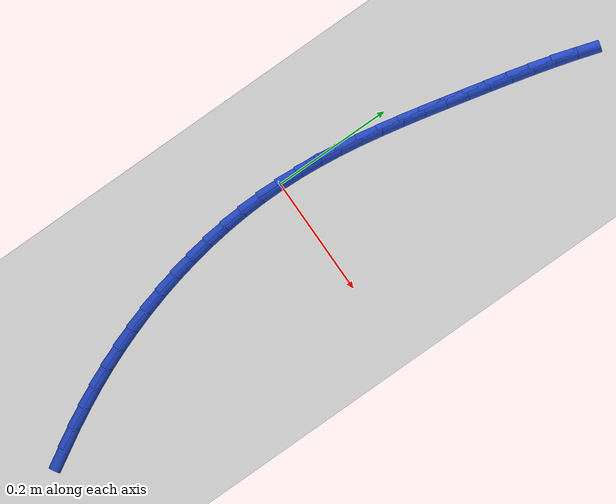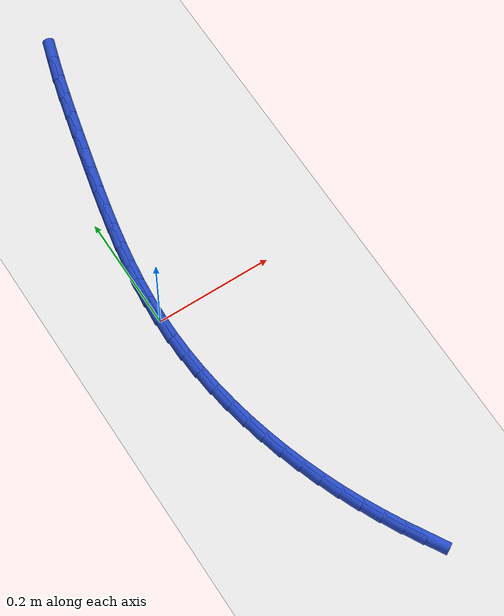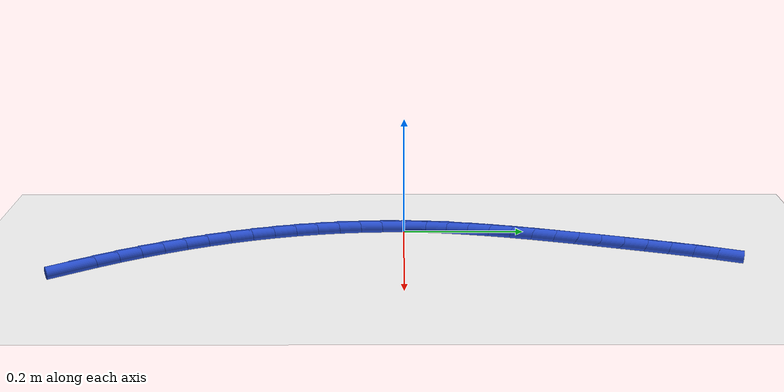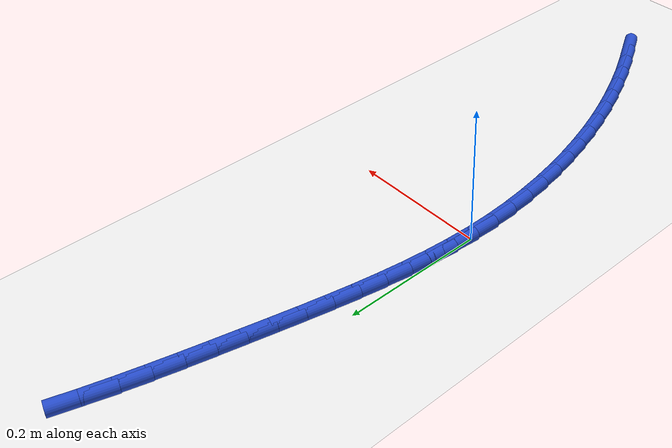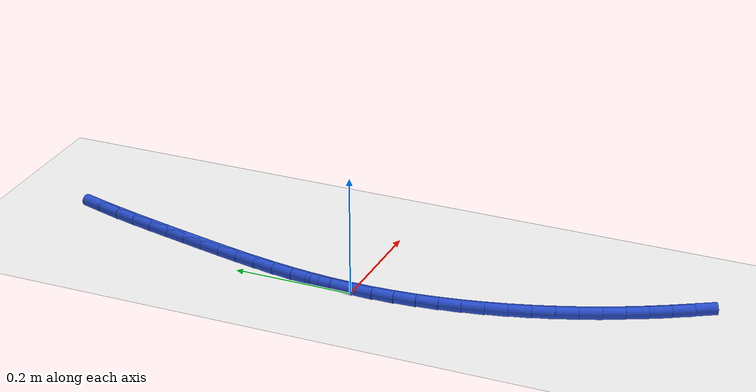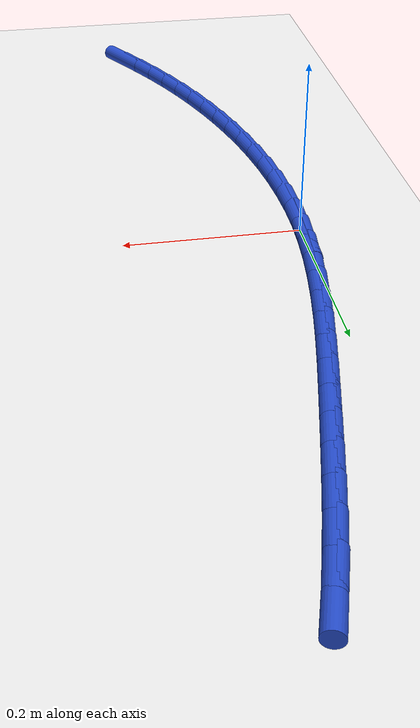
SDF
<sdf version="1.6">
 <world name="default">
  <model name="ground_plane">
   <static>1</static>
   <link name="link">
    <collision name="collision">
     <geometry><plane><normal>0 0 1</normal><size>100 100</size></plane></geometry>
     <surface><friction><ode><mu>100</mu><mu2>50</mu2></ode></friction></surface>
    </collision>
    <visual name="visual">
     <cast_shadows>0</cast_shadows>
     <geometry><plane><normal>0 0 1</normal><size>100 100</size></plane></geometry>
     <material>
      <script><uri>file://media/materials/scripts/gazebo.material</uri><name>Gazebo/WhiteGlow</name></script>
     </material>
    </visual>
   </link>
  </model>
  <model name="line">
   <link name="link_0">
    <pose>3.469446951953614e-18 -6.938893903907228e-17 0.01 0 1.57 1.5252709959177169</pose>
    <collision name="collision">
     <geometry><cylinder><radius>0.01</radius><length>0.08</length></cylinder></geometry>
    </collision>
    <visual name="visual">
     <material>
      <script><name>Gazebo/Blue</name><uri>file://media/materials/scripts/gazebo.material</uri></script>
     </material>
     <geometry><cylinder><radius>0.01</radius><length>0.08</length></cylinder></geometry>
    </visual>
   </link>
   <link name="link_1">
    <pose>0.0016215854271124785 0.03559479888819767 0.01 0 1.57 1.4843025743258724</pose>
    <collision name="collision">
     <geometry><cylinder><radius>0.01</radius><length>0.08</length></cylinder></geometry>
    </collision>
    <visual name="visual">
     <material>
      <script><name>Gazebo/Blue</name><uri>file://media/materials/scripts/gazebo.material</uri></script>
     </material>
     <geometry><cylinder><radius>0.01</radius><length>0.08</length></cylinder></geometry>
    </visual>
   </link>
   <link name="link_2">
    <pose>0.004694859227865654 0.07103789153256174 0.01 0 1.57 1.448122174521788</pose>
    <collision name="collision">
     <geometry><cylinder><radius>0.01</radius><length>0.08</length></cylinder></geometry>
    </collision>
    <visual name="visual">
     <material>
      <script><name>Gazebo/Blue</name><uri>file://media/materials/scripts/gazebo.material</uri></script>
     </material>
     <geometry><cylinder><radius>0.01</radius><length>0.08</length></cylinder></geometry>
    </visual>
   </link>
   <link name="link_3">
    <pose>0.009051522361451635 0.1063736708929551 0.01 0 1.57 1.4168965451180486</pose>
    <collision name="collision">
     <geometry><cylinder><radius>0.01</radius><length>0.08</length></cylinder></geometry>
    </collision>
    <visual name="visual">
     <material>
      <script><name>Gazebo/Blue</name><uri>file://media/materials/scripts/gazebo.material</uri></script>
     </material>
     <geometry><cylinder><radius>0.01</radius><length>0.08</length></cylinder></geometry>
    </visual>
   </link>
   <link name="link_4">
    <pose>0.014523275787062528 0.14164652992924068 0.01 0 1.57 1.3907048843323373</pose>
    <collision name="collision">
     <geometry><cylinder><radius>0.01</radius><length>0.08</length></cylinder></geometry>
    </collision>
    <visual name="visual">
     <material>
      <script><name>Gazebo/Blue</name><uri>file://media/materials/scripts/gazebo.material</uri></script>
     </material>
     <geometry><cylinder><radius>0.01</radius><length>0.08</length></cylinder></geometry>
    </visual>
   </link>
   <link name="link_5">
    <pose>0.020941820463890454 0.1769008616012815 0.01 0 1.57 1.3695609450814363</pose>
    <collision name="collision">
     <geometry><cylinder><radius>0.01</radius><length>0.08</length></cylinder></geometry>
    </collision>
    <visual name="visual">
     <material>
      <script><name>Gazebo/Blue</name><uri>file://media/materials/scripts/gazebo.material</uri></script>
     </material>
     <geometry><cylinder><radius>0.01</radius><length>0.08</length></cylinder></geometry>
    </visual>
   </link>
   <link name="link_6">
    <pose>0.028138857351127516 0.21218105886894056 0.01 0 1.57 1.3534331985920862</pose>
    <collision name="collision">
     <geometry><cylinder><radius>0.01</radius><length>0.08</length></cylinder></geometry>
    </collision>
    <visual name="visual">
     <material>
      <script><name>Gazebo/Blue</name><uri>file://media/materials/scripts/gazebo.material</uri></script>
     </material>
     <geometry><cylinder><radius>0.01</radius><length>0.08</length></cylinder></geometry>
    </visual>
   </link>
   <link name="link_7">
    <pose>0.035946087407965795 0.24753151469208062 0.01 0 1.57 1.3422615743175024</pose>
    <collision name="collision">
     <geometry><cylinder><radius>0.01</radius><length>0.08</length></cylinder></geometry>
    </collision>
    <visual name="visual">
     <material>
      <script><name>Gazebo/Blue</name><uri>file://media/materials/scripts/gazebo.material</uri></script>
     </material>
     <geometry><cylinder><radius>0.01</radius><length>0.08</length></cylinder></geometry>
    </visual>
   </link>
   <link name="link_8">
    <pose>0.04419521159359743 0.28299662203056475 0.01 0 1.57 1.3359701525868268</pose>
    <collision name="collision">
     <geometry><cylinder><radius>0.01</radius><length>0.08</length></cylinder></geometry>
    </collision>
    <visual name="visual">
     <material>
      <script><name>Gazebo/Blue</name><uri>file://media/materials/scripts/gazebo.material</uri></script>
     </material>
     <geometry><cylinder><radius>0.01</radius><length>0.08</length></cylinder></geometry>
    </visual>
   </link>
   <link name="link_9">
    <pose>0.05271793086721454 0.318620773844256 0.01 0 1.57 1.3335910321006836</pose>
    <collision name="collision">
     <geometry><cylinder><radius>0.01</radius><length>0.08</length></cylinder></geometry>
    </collision>
    <visual name="visual">
     <material>
      <script><name>Gazebo/Blue</name><uri>file://media/materials/scripts/gazebo.material</uri></script>
     </material>
     <geometry><cylinder><radius>0.01</radius><length>0.08</length></cylinder></geometry>
    </visual>
   </link>
   <link name="link_10">
    <pose>0.06137551307065232 0.3544319178844713 0.01 0 1.57 1.3291348992225152</pose>
    <collision name="collision">
     <geometry><cylinder><radius>0.01</radius><length>0.08</length></cylinder></geometry>
    </collision>
    <visual name="visual">
     <material>
      <script><name>Gazebo/Blue</name><uri>file://media/materials/scripts/gazebo.material</uri></script>
     </material>
     <geometry><cylinder><radius>0.01</radius><length>0.08</length></cylinder></geometry>
    </visual>
   </link>
   <link name="link_11">
    <pose>0.07022792285595555 0.39034748600808084 0.01 0 1.57 1.3201595947029447</pose>
    <collision name="collision">
     <geometry><cylinder><radius>0.01</radius><length>0.08</length></cylinder></geometry>
    </collision>
    <visual name="visual">
     <material>
      <script><name>Gazebo/Blue</name><uri>file://media/materials/scripts/gazebo.material</uri></script>
     </material>
     <geometry><cylinder><radius>0.01</radius><length>0.08</length></cylinder></geometry>
    </visual>
   </link>
   <link name="link_12">
    <pose>0.07941697653739098 0.42623938387728244 0.01 0 1.57 1.3066158979692932</pose>
    <collision name="collision">
     <geometry><cylinder><radius>0.01</radius><length>0.08</length></cylinder></geometry>
    </collision>
    <visual name="visual">
     <material>
      <script><name>Gazebo/Blue</name><uri>file://media/materials/scripts/gazebo.material</uri></script>
     </material>
     <geometry><cylinder><radius>0.01</radius><length>0.08</length></cylinder></geometry>
    </visual>
   </link>
   <link name="link_13">
    <pose>0.0890847450197053 0.4619793755501151 0.01 0 1.57 1.2884036981123361</pose>
    <collision name="collision">
     <geometry><cylinder><radius>0.01</radius><length>0.08</length></cylinder></geometry>
    </collision>
    <visual name="visual">
     <material>
      <script><name>Gazebo/Blue</name><uri>file://media/materials/scripts/gazebo.material</uri></script>
     </material>
     <geometry><cylinder><radius>0.01</radius><length>0.08</length></cylinder></geometry>
    </visual>
   </link>
   <link name="link_14">
    <pose>0.09937329920764522 0.4974392250846179 0.01 0 1.57 1.265370862041352</pose>
    <collision name="collision">
     <geometry><cylinder><radius>0.01</radius><length>0.08</length></cylinder></geometry>
    </collision>
    <visual name="visual">
     <material>
      <script><name>Gazebo/Blue</name><uri>file://media/materials/scripts/gazebo.material</uri></script>
     </material>
     <geometry><cylinder><radius>0.01</radius><length>0.08</length></cylinder></geometry>
    </visual>
   </link>
   <link name="link_175">
    <pose>0.14332247752189303 -0.513489507335799 0.01 0 1.57 -1.0478483712245867</pose>
    <collision name="collision">
     <geometry><cylinder><radius>0.01</radius><length>0.08</length></cylinder></geometry>
    </collision>
    <visual name="visual">
     <material>
      <script><name>Gazebo/Blue</name><uri>file://media/materials/scripts/gazebo.material</uri></script>
     </material>
     <geometry><cylinder><radius>0.01</radius><length>0.08</length></cylinder></geometry>
    </visual>
   </link>
   <link name="link_176">
    <pose>0.12536598000557306 -0.4823411427582502 0.01 0 1.57 -1.080721966199883</pose>
    <collision name="collision">
     <geometry><cylinder><radius>0.01</radius><length>0.08</length></cylinder></geometry>
    </collision>
    <visual name="visual">
     <material>
      <script><name>Gazebo/Blue</name><uri>file://media/materials/scripts/gazebo.material</uri></script>
     </material>
     <geometry><cylinder><radius>0.01</radius><length>0.08</length></cylinder></geometry>
    </visual>
   </link>
   <link name="link_177">
    <pose>0.1084879889702696 -0.45070382734485265 0.01 0 1.57 -1.1144539237789624</pose>
    <collision name="collision">
     <geometry><cylinder><radius>0.01</radius><length>0.08</length></cylinder></geometry>
    </collision>
    <visual name="visual">
     <material>
      <script><name>Gazebo/Blue</name><uri>file://media/materials/scripts/gazebo.material</uri></script>
     </material>
     <geometry><cylinder><radius>0.01</radius><length>0.08</length></cylinder></geometry>
    </visual>
   </link>
   <link name="link_178">
    <pose>0.09270857056025017 -0.41856007475043366 0.01 0 1.57 -1.14895283165816</pose>
    <collision name="collision">
     <geometry><cylinder><radius>0.01</radius><length>0.08</length></cylinder></geometry>
    </collision>
    <visual name="visual">
     <material>
      <script><name>Gazebo/Blue</name><uri>file://media/materials/scripts/gazebo.material</uri></script>
     </material>
     <geometry><cylinder><radius>0.01</radius><length>0.08</length></cylinder></geometry>
    </visual>
   </link>
   <link name="link_179">
    <pose>0.07804779091978246 -0.38589239862982055 0.01 0 1.57 -1.1841156832962458</pose>
    <collision name="collision">
     <geometry><cylinder><radius>0.01</radius><length>0.08</length></cylinder></geometry>
    </collision>
    <visual name="visual">
     <material>
      <script><name>Gazebo/Blue</name><uri>file://media/materials/scripts/gazebo.material</uri></script>
     </material>
     <geometry><cylinder><radius>0.01</radius><length>0.08</length></cylinder></geometry>
    </visual>
   </link>
   <link name="link_180">
    <pose>0.06452571619313324 -0.3526833126378388 0.01 0 1.57 -1.2198288719360468</pose>
    <collision name="collision">
     <geometry><cylinder><radius>0.01</radius><length>0.08</length></cylinder></geometry>
    </collision>
    <visual name="visual">
     <material>
      <script><name>Gazebo/Blue</name><uri>file://media/materials/scripts/gazebo.material</uri></script>
     </material>
     <geometry><cylinder><radius>0.01</radius><length>0.08</length></cylinder></geometry>
    </visual>
   </link>
   <link name="link_181">
    <pose>0.05216243583164081 -0.31891541360673925 0.01 0 1.57 -1.2559384207884199</pose>
    <collision name="collision">
     <geometry><cylinder><radius>0.01</radius><length>0.08</length></cylinder></geometry>
    </collision>
    <visual name="visual">
     <material>
      <script><name>Gazebo/Blue</name><uri>file://media/materials/scripts/gazebo.material</uri></script>
     </material>
     <geometry><cylinder><radius>0.01</radius><length>0.08</length></cylinder></geometry>
    </visual>
   </link>
   <link name="link_182">
    <pose>0.0409855325851617 -0.2845980401791995 0.01 0 1.57 -1.2923900507349757</pose>
    <collision name="collision">
     <geometry><cylinder><radius>0.01</radius><length>0.08</length></cylinder></geometry>
    </collision>
    <visual name="visual">
     <material>
      <script><name>Gazebo/Blue</name><uri>file://media/materials/scripts/gazebo.material</uri></script>
     </material>
     <geometry><cylinder><radius>0.01</radius><length>0.08</length></cylinder></geometry>
    </visual>
   </link>
   <link name="link_183">
    <pose>0.031040779359661454 -0.24980544736351473 0.01 0 1.57 -1.3293477980767565</pose>
    <collision name="collision">
     <geometry><cylinder><radius>0.01</radius><length>0.08</length></cylinder></geometry>
    </collision>
    <visual name="visual">
     <material>
      <script><name>Gazebo/Blue</name><uri>file://media/materials/scripts/gazebo.material</uri></script>
     </material>
     <geometry><cylinder><radius>0.01</radius><length>0.08</length></cylinder></geometry>
    </visual>
   </link>
   <link name="link_184">
    <pose>0.022376655829323782 -0.21462154998366526 0.01 0 1.57 -1.3669948023093415</pose>
    <collision name="collision">
     <geometry><cylinder><radius>0.01</radius><length>0.08</length></cylinder></geometry>
    </collision>
    <visual name="visual">
     <material>
      <script><name>Gazebo/Blue</name><uri>file://media/materials/scripts/gazebo.material</uri></script>
     </material>
     <geometry><cylinder><radius>0.01</radius><length>0.08</length></cylinder></geometry>
    </visual>
   </link>
   <link name="link_185">
    <pose>0.015041641668332401 -0.1791302628636312 0.01 0 1.57 -1.4055123975767927</pose>
    <collision name="collision">
     <geometry><cylinder><radius>0.01</radius><length>0.08</length></cylinder></geometry>
    </collision>
    <visual name="visual">
     <material>
      <script><name>Gazebo/Blue</name><uri>file://media/materials/scripts/gazebo.material</uri></script>
     </material>
     <geometry><cylinder><radius>0.01</radius><length>0.08</length></cylinder></geometry>
    </visual>
   </link>
   <link name="link_186">
    <pose>0.009084216550871141 -0.14341550082739346 0.01 0 1.57 -1.4450804016134307</pose>
    <collision name="collision">
     <geometry><cylinder><radius>0.01</radius><length>0.08</length></cylinder></geometry>
    </collision>
    <visual name="visual">
     <material>
      <script><name>Gazebo/Blue</name><uri>file://media/materials/scripts/gazebo.material</uri></script>
     </material>
     <geometry><cylinder><radius>0.01</radius><length>0.08</length></cylinder></geometry>
    </visual>
   </link>
   <link name="link_187">
    <pose>0.004552860151123465 -0.10756117869893088 0.01 0 1.57 -1.4858768234285338</pose>
    <collision name="collision">
     <geometry><cylinder><radius>0.01</radius><length>0.08</length></cylinder></geometry>
    </collision>
    <visual name="visual">
     <material>
      <script><name>Gazebo/Blue</name><uri>file://media/materials/scripts/gazebo.material</uri></script>
     </material>
     <geometry><cylinder><radius>0.01</radius><length>0.08</length></cylinder></geometry>
    </visual>
   </link>
   <link name="link_188">
    <pose>0.0014960521432732365 -0.0716512113022243 0.01 0 1.57 -1.5280768654719763</pose>
    <collision name="collision">
     <geometry><cylinder><radius>0.01</radius><length>0.08</length></cylinder></geometry>
    </collision>
    <visual name="visual">
     <material>
      <script><name>Gazebo/Blue</name><uri>file://media/materials/scripts/gazebo.material</uri></script>
     </material>
     <geometry><cylinder><radius>0.01</radius><length>0.08</length></cylinder></geometry>
    </visual>
   </link>
   <link name="link_189">
    <pose>-3.7727798495826304e-05 -0.035769513461253906 0.01 0 1.57 1.5697415798650542</pose>
    <collision name="collision">
     <geometry><cylinder><radius>0.01</radius><length>0.08</length></cylinder></geometry>
    </collision>
    <visual name="visual">
     <material>
      <script><name>Gazebo/Blue</name><uri>file://media/materials/scripts/gazebo.material</uri></script>
     </material>
     <geometry><cylinder><radius>0.01</radius><length>0.08</length></cylinder></geometry>
    </visual>
   </link>
   <link name="link_190">
    <pose>-1.734723475976807e-18 2.7755575615628914e-17 0.01 0 1.57 1.5242301797334208</pose>
    <collision name="collision">
     <geometry><cylinder><radius>0.01</radius><length>0.08</length></cylinder></geometry>
    </collision>
    <visual name="visual">
     <material>
      <script><name>Gazebo/Blue</name><uri>file://media/materials/scripts/gazebo.material</uri></script>
     </material>
     <geometry><cylinder><radius>0.01</radius><length>0.08</length></cylinder></geometry>
    </visual>
   </link>
   <link name="link_191">
    <pose>0.0016577152129444196 0.035573414257557376 0.01 0 1.57 1.524230179733421</pose>
    <collision name="collision">
     <geometry><cylinder><radius>0.01</radius><length>0.08</length></cylinder></geometry>
    </collision>
    <visual name="visual">
     <material>
      <script><name>Gazebo/Blue</name><uri>file://media/materials/scripts/gazebo.material</uri></script>
     </material>
     <geometry><cylinder><radius>0.01</radius><length>0.08</length></cylinder></geometry>
    </visual>
   </link>
  </model>
 </world>
</sdf>
